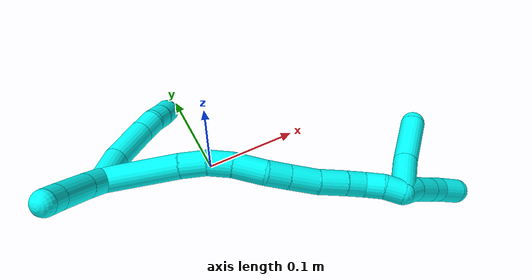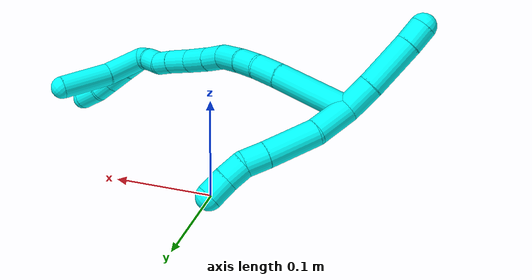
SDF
<sdf version="1.7">
 <world name="default">
  <model name="3">
   <static>0</static>
   <link name="3">
    <collision name="collision-cylinder-e_1_2_8">
     <pose>-0.005307 -0.003405 0.017743 0.189621 -0.285698 -0.027353</pose>
     <geometry><cylinder><radius>0.0125</radius><length>0.03766</length></cylinder></geometry>
     <surface>
      <friction><ode><mu>1.16</mu><mu2>1.16</mu2><slip1>0</slip1><slip2>0</slip2></ode></friction>
      <contact><ode><kp>1e+06</kp><kd>1</kd><max_vel>0</max_vel><min_depth>0.001</min_depth></ode></contact>
     </surface>
    </collision>
    <visual name="visual-cylinder-e_1_2_8">
     <pose>-0.005307 -0.003405 0.017743 0.189621 -0.285698 -0.027353</pose>
     <geometry><cylinder><radius>0.0125</radius><length>0.03766</length></cylinder></geometry>
     <material><ambient>0.003922 1 0.996078 1</ambient></material>
    </visual>
    <collision name="collision-cylinder-e_2_8_9">
     <pose>-0.013354 -0.015102 0.058577 0.344715 -0.111219 -0.019381</pose>
     <geometry><cylinder><radius>0.0125</radius><length>0.049374</length></cylinder></geometry>
     <surface>
      <friction><ode><mu>1.16</mu><mu2>1.16</mu2><slip1>0</slip1><slip2>0</slip2></ode></friction>
      <contact><ode><kp>1e+06</kp><kd>1</kd><max_vel>0</max_vel><min_depth>0.001</min_depth></ode></contact>
     </surface>
    </collision>
    <visual name="visual-cylinder-e_2_8_9">
     <pose>-0.013354 -0.015102 0.058577 0.344715 -0.111219 -0.019381</pose>
     <geometry><cylinder><radius>0.0125</radius><length>0.049374</length></cylinder></geometry>
     <material><ambient>0.003922 1 0.996078 1</ambient></material>
    </visual>
    <collision name="collision-cylinder-e_3_9_10">
     <pose>-0.016938 -0.027388 0.091767 0.376767 -0.077621 -0.014805</pose>
     <geometry><cylinder><radius>0.0125</radius><length>0.021788</length></cylinder></geometry>
     <surface>
      <friction><ode><mu>1.16</mu><mu2>1.16</mu2><slip1>0</slip1><slip2>0</slip2></ode></friction>
      <contact><ode><kp>1e+06</kp><kd>1</kd><max_vel>0</max_vel><min_depth>0.001</min_depth></ode></contact>
     </surface>
    </collision>
    <visual name="visual-cylinder-e_3_9_10">
     <pose>-0.016938 -0.027388 0.091767 0.376767 -0.077621 -0.014805</pose>
     <geometry><cylinder><radius>0.0125</radius><length>0.021788</length></cylinder></geometry>
     <material><ambient>0.003922 1 0.996078 1</ambient></material>
    </visual>
    <collision name="collision-cylinder-e_4_10_11">
     <pose>-0.018457 -0.031745 0.111865 0.035994 -0.067303 -0.001212</pose>
     <geometry><cylinder><radius>0.0125</radius><length>0.020055</length></cylinder></geometry>
     <surface>
      <friction><ode><mu>1.16</mu><mu2>1.16</mu2><slip1>0</slip1><slip2>0</slip2></ode></friction>
      <contact><ode><kp>1e+06</kp><kd>1</kd><max_vel>0</max_vel><min_depth>0.001</min_depth></ode></contact>
     </surface>
    </collision>
    <visual name="visual-cylinder-e_4_10_11">
     <pose>-0.018457 -0.031745 0.111865 0.035994 -0.067303 -0.001212</pose>
     <geometry><cylinder><radius>0.0125</radius><length>0.020055</length></cylinder></geometry>
     <material><ambient>0.003922 1 0.996078 1</ambient></material>
    </visual>
    <collision name="collision-cylinder-e_5_11_6">
     <pose>-0.020681 -0.031692 0.132303 -0.039498 -0.147173 0.002912</pose>
     <geometry><cylinder><radius>0.0125</radius><length>0.021123</length></cylinder></geometry>
     <surface>
      <friction><ode><mu>1.16</mu><mu2>1.16</mu2><slip1>0</slip1><slip2>0</slip2></ode></friction>
      <contact><ode><kp>1e+06</kp><kd>1</kd><max_vel>0</max_vel><min_depth>0.001</min_depth></ode></contact>
     </surface>
    </collision>
    <visual name="visual-cylinder-e_5_11_6">
     <pose>-0.020681 -0.031692 0.132303 -0.039498 -0.147173 0.002912</pose>
     <geometry><cylinder><radius>0.0125</radius><length>0.021123</length></cylinder></geometry>
     <material><ambient>0.003922 1 0.996078 1</ambient></material>
    </visual>
    <collision name="collision-cylinder-e_1_2_12">
     <pose>-0.000817 -0.001149 -0.014794 3.06405 -0.055004 -1.23376</pose>
     <geometry><cylinder><radius>0.0125</radius><length>0.029722</length></cylinder></geometry>
     <surface>
      <friction><ode><mu>1.16</mu><mu2>1.16</mu2><slip1>0</slip1><slip2>0</slip2></ode></friction>
      <contact><ode><kp>1e+06</kp><kd>1</kd><max_vel>0</max_vel><min_depth>0.001</min_depth></ode></contact>
     </surface>
    </collision>
    <visual name="visual-cylinder-e_1_2_12">
     <pose>-0.000817 -0.001149 -0.014794 3.06405 -0.055004 -1.23376</pose>
     <geometry><cylinder><radius>0.0125</radius><length>0.029722</length></cylinder></geometry>
     <material><ambient>0.003922 1 0.996078 1</ambient></material>
    </visual>
    <collision name="collision-cylinder-e_2_12_13">
     <pose>-0.001627 -0.005194 -0.054093 3.02399 0.000299 0.005085</pose>
     <geometry><cylinder><radius>0.0125</radius><length>0.049353</length></cylinder></geometry>
     <surface>
      <friction><ode><mu>1.16</mu><mu2>1.16</mu2><slip1>0</slip1><slip2>0</slip2></ode></friction>
      <contact><ode><kp>1e+06</kp><kd>1</kd><max_vel>0</max_vel><min_depth>0.001</min_depth></ode></contact>
     </surface>
    </collision>
    <visual name="visual-cylinder-e_2_12_13">
     <pose>-0.001627 -0.005194 -0.054093 3.02399 0.000299 0.005085</pose>
     <geometry><cylinder><radius>0.0125</radius><length>0.049353</length></cylinder></geometry>
     <material><ambient>0.003922 1 0.996078 1</ambient></material>
    </visual>
    <collision name="collision-cylinder-e_3_13_5">
     <pose>-0.001137 -0.009669 -0.088931 2.98988 0.046087 0.588877</pose>
     <geometry><cylinder><radius>0.0125</radius><length>0.020926</length></cylinder></geometry>
     <surface>
      <friction><ode><mu>1.16</mu><mu2>1.16</mu2><slip1>0</slip1><slip2>0</slip2></ode></friction>
      <contact><ode><kp>1e+06</kp><kd>1</kd><max_vel>0</max_vel><min_depth>0.001</min_depth></ode></contact>
     </surface>
    </collision>
    <visual name="visual-cylinder-e_3_13_5">
     <pose>-0.001137 -0.009669 -0.088931 2.98988 0.046087 0.588877</pose>
     <geometry><cylinder><radius>0.0125</radius><length>0.020926</length></cylinder></geometry>
     <material><ambient>0.003922 1 0.996078 1</ambient></material>
    </visual>
    <collision name="collision-cylinder-e_1_2_14">
     <pose>0.02624 -0.025286 0.011461 1.14525 0.757218 0.502085</pose>
     <geometry><cylinder><radius>0.0125</radius><length>0.076402</length></cylinder></geometry>
     <surface>
      <friction><ode><mu>1.16</mu><mu2>1.16</mu2><slip1>0</slip1><slip2>0</slip2></ode></friction>
      <contact><ode><kp>1e+06</kp><kd>1</kd><max_vel>0</max_vel><min_depth>0.001</min_depth></ode></contact>
     </surface>
    </collision>
    <visual name="visual-cylinder-e_1_2_14">
     <pose>0.02624 -0.025286 0.011461 1.14525 0.757218 0.502085</pose>
     <geometry><cylinder><radius>0.0125</radius><length>0.076402</length></cylinder></geometry>
     <material><ambient>0.003922 1 0.996078 1</ambient></material>
    </visual>
    <collision name="collision-cylinder-e_2_14_15">
     <pose>0.062199 -0.058588 0.027062 1.09402 0.822615 0.51928</pose>
     <geometry><cylinder><radius>0.0125</radius><length>0.026521</length></cylinder></geometry>
     <surface>
      <friction><ode><mu>1.16</mu><mu2>1.16</mu2><slip1>0</slip1><slip2>0</slip2></ode></friction>
      <contact><ode><kp>1e+06</kp><kd>1</kd><max_vel>0</max_vel><min_depth>0.001</min_depth></ode></contact>
     </surface>
    </collision>
    <visual name="visual-cylinder-e_2_14_15">
     <pose>0.062199 -0.058588 0.027062 1.09402 0.822615 0.51928</pose>
     <geometry><cylinder><radius>0.0125</radius><length>0.026521</length></cylinder></geometry>
     <material><ambient>0.003922 1 0.996078 1</ambient></material>
    </visual>
    <collision name="collision-cylinder-e_3_15_16">
     <pose>0.081993 -0.071824 0.034797 0.967851 1.00915 0.565019</pose>
     <geometry><cylinder><radius>0.0125</radius><length>0.023805</length></cylinder></geometry>
     <surface>
      <friction><ode><mu>1.16</mu><mu2>1.16</mu2><slip1>0</slip1><slip2>0</slip2></ode></friction>
      <contact><ode><kp>1e+06</kp><kd>1</kd><max_vel>0</max_vel><min_depth>0.001</min_depth></ode></contact>
     </surface>
    </collision>
    <visual name="visual-cylinder-e_3_15_16">
     <pose>0.081993 -0.071824 0.034797 0.967851 1.00915 0.565019</pose>
     <geometry><cylinder><radius>0.0125</radius><length>0.023805</length></cylinder></geometry>
     <material><ambient>0.003922 1 0.996078 1</ambient></material>
    </visual>
    <collision name="collision-cylinder-e_4_16_17">
     <pose>0.106453 -0.081688 0.042936 0.796036 1.14667 0.530185</pose>
     <geometry><cylinder><radius>0.0125</radius><length>0.03157</length></cylinder></geometry>
     <surface>
      <friction><ode><mu>1.16</mu><mu2>1.16</mu2><slip1>0</slip1><slip2>0</slip2></ode></friction>
      <contact><ode><kp>1e+06</kp><kd>1</kd><max_vel>0</max_vel><min_depth>0.001</min_depth></ode></contact>
     </surface>
    </collision>
    <visual name="visual-cylinder-e_4_16_17">
     <pose>0.106453 -0.081688 0.042936 0.796036 1.14667 0.530185</pose>
     <geometry><cylinder><radius>0.0125</radius><length>0.03157</length></cylinder></geometry>
     <material><ambient>0.003922 1 0.996078 1</ambient></material>
    </visual>
    <collision name="collision-cylinder-e_5_17_18">
     <pose>0.130283 -0.088755 0.053825 0.36502 0.947197 0.188617</pose>
     <geometry><cylinder><radius>0.0125</radius><length>0.023265</length></cylinder></geometry>
     <surface>
      <friction><ode><mu>1.16</mu><mu2>1.16</mu2><slip1>0</slip1><slip2>0</slip2></ode></friction>
      <contact><ode><kp>1e+06</kp><kd>1</kd><max_vel>0</max_vel><min_depth>0.001</min_depth></ode></contact>
     </surface>
    </collision>
    <visual name="visual-cylinder-e_5_17_18">
     <pose>0.130283 -0.088755 0.053825 0.36502 0.947197 0.188617</pose>
     <geometry><cylinder><radius>0.0125</radius><length>0.023265</length></cylinder></geometry>
     <material><ambient>0.003922 1 0.996078 1</ambient></material>
    </visual>
    <collision name="collision-cylinder-e_6_18_19">
     <pose>0.15208 -0.094816 0.06786 0.441751 0.96786 0.234956</pose>
     <geometry><cylinder><radius>0.0125</radius><length>0.029999</length></cylinder></geometry>
     <surface>
      <friction><ode><mu>1.16</mu><mu2>1.16</mu2><slip1>0</slip1><slip2>0</slip2></ode></friction>
      <contact><ode><kp>1e+06</kp><kd>1</kd><max_vel>0</max_vel><min_depth>0.001</min_depth></ode></contact>
     </surface>
    </collision>
    <visual name="visual-cylinder-e_6_18_19">
     <pose>0.15208 -0.094816 0.06786 0.441751 0.96786 0.234956</pose>
     <geometry><cylinder><radius>0.0125</radius><length>0.029999</length></cylinder></geometry>
     <material><ambient>0.003922 1 0.996078 1</ambient></material>
    </visual>
    <collision name="collision-cylinder-e_7_19_20">
     <pose>0.175232 -0.103014 0.083521 0.519705 0.865858 0.244523</pose>
     <geometry><cylinder><radius>0.0125</radius><length>0.028351</length></cylinder></geometry>
     <surface>
      <friction><ode><mu>1.16</mu><mu2>1.16</mu2><slip1>0</slip1><slip2>0</slip2></ode></friction>
      <contact><ode><kp>1e+06</kp><kd>1</kd><max_vel>0</max_vel><min_depth>0.001</min_depth></ode></contact>
     </surface>
    </collision>
    <visual name="visual-cylinder-e_7_19_20">
     <pose>0.175232 -0.103014 0.083521 0.519705 0.865858 0.244523</pose>
     <geometry><cylinder><radius>0.0125</radius><length>0.028351</length></cylinder></geometry>
     <material><ambient>0.003922 1 0.996078 1</ambient></material>
    </visual>
    <collision name="collision-cylinder-e_8_20_21">
     <pose>0.193606 -0.110388 0.0974 0.444383 0.858662 0.206126</pose>
     <geometry><cylinder><radius>0.0125</radius><length>0.020021</length></cylinder></geometry>
     <surface>
      <friction><ode><mu>1.16</mu><mu2>1.16</mu2><slip1>0</slip1><slip2>0</slip2></ode></friction>
      <contact><ode><kp>1e+06</kp><kd>1</kd><max_vel>0</max_vel><min_depth>0.001</min_depth></ode></contact>
     </surface>
    </collision>
    <visual name="visual-cylinder-e_8_20_21">
     <pose>0.193606 -0.110388 0.0974 0.444383 0.858662 0.206126</pose>
     <geometry><cylinder><radius>0.0125</radius><length>0.020021</length></cylinder></geometry>
     <material><ambient>0.003922 1 0.996078 1</ambient></material>
    </visual>
    <collision name="collision-cylinder-e_9_21_22">
     <pose>0.209735 -0.117478 0.106308 0.958943 1.02217 0.567419</pose>
     <geometry><cylinder><radius>0.0125</radius><length>0.020044</length></cylinder></geometry>
     <surface>
      <friction><ode><mu>1.16</mu><mu2>1.16</mu2><slip1>0</slip1><slip2>0</slip2></ode></friction>
      <contact><ode><kp>1e+06</kp><kd>1</kd><max_vel>0</max_vel><min_depth>0.001</min_depth></ode></contact>
     </surface>
    </collision>
    <visual name="visual-cylinder-e_9_21_22">
     <pose>0.209735 -0.117478 0.106308 0.958943 1.02217 0.567419</pose>
     <geometry><cylinder><radius>0.0125</radius><length>0.020044</length></cylinder></geometry>
     <material><ambient>0.003922 1 0.996078 1</ambient></material>
    </visual>
    <collision name="collision-cylinder-e_10_22_1">
     <pose>0.227519 -0.123968 0.112486 0.60825 1.17388 0.411608</pose>
     <geometry><cylinder><radius>0.0125</radius><length>0.020022</length></cylinder></geometry>
     <surface>
      <friction><ode><mu>1.16</mu><mu2>1.16</mu2><slip1>0</slip1><slip2>0</slip2></ode></friction>
      <contact><ode><kp>1e+06</kp><kd>1</kd><max_vel>0</max_vel><min_depth>0.001</min_depth></ode></contact>
     </surface>
    </collision>
    <visual name="visual-cylinder-e_10_22_1">
     <pose>0.227519 -0.123968 0.112486 0.60825 1.17388 0.411608</pose>
     <geometry><cylinder><radius>0.0125</radius><length>0.020022</length></cylinder></geometry>
     <material><ambient>0.003922 1 0.996078 1</ambient></material>
    </visual>
    <collision name="collision-cylinder-e_1_1_23">
     <pose>0.240484 -0.126778 0.127152 0.052032 0.313677 0.00823</pose>
     <geometry><cylinder><radius>0.0125</radius><length>0.02419</length></cylinder></geometry>
     <surface>
      <friction><ode><mu>1.16</mu><mu2>1.16</mu2><slip1>0</slip1><slip2>0</slip2></ode></friction>
      <contact><ode><kp>1e+06</kp><kd>1</kd><max_vel>0</max_vel><min_depth>0.001</min_depth></ode></contact>
     </surface>
    </collision>
    <visual name="visual-cylinder-e_1_1_23">
     <pose>0.240484 -0.126778 0.127152 0.052032 0.313677 0.00823</pose>
     <geometry><cylinder><radius>0.0125</radius><length>0.02419</length></cylinder></geometry>
     <material><ambient>0.003922 1 0.996078 1</ambient></material>
    </visual>
    <collision name="collision-cylinder-e_2_23_24">
     <pose>0.250685 -0.127382 0.150933 0.000439 0.484411 0.000108</pose>
     <geometry><cylinder><radius>0.0125</radius><length>0.027782</length></cylinder></geometry>
     <surface>
      <friction><ode><mu>1.16</mu><mu2>1.16</mu2><slip1>0</slip1><slip2>0</slip2></ode></friction>
      <contact><ode><kp>1e+06</kp><kd>1</kd><max_vel>0</max_vel><min_depth>0.001</min_depth></ode></contact>
     </surface>
    </collision>
    <visual name="visual-cylinder-e_2_23_24">
     <pose>0.250685 -0.127382 0.150933 0.000439 0.484411 0.000108</pose>
     <geometry><cylinder><radius>0.0125</radius><length>0.027782</length></cylinder></geometry>
     <material><ambient>0.003922 1 0.996078 1</ambient></material>
    </visual>
    <collision name="collision-cylinder-e_3_24_25">
     <pose>0.261568 -0.127524 0.172252 0.015177 0.454873 0.003513</pose>
     <geometry><cylinder><radius>0.0125</radius><length>0.020097</length></cylinder></geometry>
     <surface>
      <friction><ode><mu>1.16</mu><mu2>1.16</mu2><slip1>0</slip1><slip2>0</slip2></ode></friction>
      <contact><ode><kp>1e+06</kp><kd>1</kd><max_vel>0</max_vel><min_depth>0.001</min_depth></ode></contact>
     </surface>
    </collision>
    <visual name="visual-cylinder-e_3_24_25">
     <pose>0.261568 -0.127524 0.172252 0.015177 0.454873 0.003513</pose>
     <geometry><cylinder><radius>0.0125</radius><length>0.020097</length></cylinder></geometry>
     <material><ambient>0.003922 1 0.996078 1</ambient></material>
    </visual>
    <collision name="collision-cylinder-e_4_25_4">
     <pose>0.274695 -0.12931 0.192068 0.151615 0.673595 0.053175</pose>
     <geometry><cylinder><radius>0.0125</radius><length>0.027932</length></cylinder></geometry>
     <surface>
      <friction><ode><mu>1.16</mu><mu2>1.16</mu2><slip1>0</slip1><slip2>0</slip2></ode></friction>
      <contact><ode><kp>1e+06</kp><kd>1</kd><max_vel>0</max_vel><min_depth>0.001</min_depth></ode></contact>
     </surface>
    </collision>
    <visual name="visual-cylinder-e_4_25_4">
     <pose>0.274695 -0.12931 0.192068 0.151615 0.673595 0.053175</pose>
     <geometry><cylinder><radius>0.0125</radius><length>0.027932</length></cylinder></geometry>
     <material><ambient>0.003922 1 0.996078 1</ambient></material>
    </visual>
    <collision name="collision-cylinder-e_1_1_26">
     <pose>0.229022 -0.133239 0.135815 0.336949 -0.347325 -0.059659</pose>
     <geometry><cylinder><radius>0.0125</radius><length>0.04542</length></cylinder></geometry>
     <surface>
      <friction><ode><mu>1.16</mu><mu2>1.16</mu2><slip1>0</slip1><slip2>0</slip2></ode></friction>
      <contact><ode><kp>1e+06</kp><kd>1</kd><max_vel>0</max_vel><min_depth>0.001</min_depth></ode></contact>
     </surface>
    </collision>
    <visual name="visual-cylinder-e_1_1_26">
     <pose>0.229022 -0.133239 0.135815 0.336949 -0.347325 -0.059659</pose>
     <geometry><cylinder><radius>0.0125</radius><length>0.04542</length></cylinder></geometry>
     <material><ambient>0.003922 1 0.996078 1</ambient></material>
    </visual>
    <collision name="collision-cylinder-e_2_26_3">
     <pose>0.212701 -0.152548 0.178792 0.492569 -0.320226 -0.081151</pose>
     <geometry><cylinder><radius>0.0125</radius><length>0.05458</length></cylinder></geometry>
     <surface>
      <friction><ode><mu>1.16</mu><mu2>1.16</mu2><slip1>0</slip1><slip2>0</slip2></ode></friction>
      <contact><ode><kp>1e+06</kp><kd>1</kd><max_vel>0</max_vel><min_depth>0.001</min_depth></ode></contact>
     </surface>
    </collision>
    <visual name="visual-cylinder-e_2_26_3">
     <pose>0.212701 -0.152548 0.178792 0.492569 -0.320226 -0.081151</pose>
     <geometry><cylinder><radius>0.0125</radius><length>0.05458</length></cylinder></geometry>
     <material><ambient>0.003922 1 0.996078 1</ambient></material>
    </visual>
    <collision name="collision-sphere-3">
     <pose>0.204111 -0.164798 0.201615 0 -0 0</pose>
     <geometry><sphere><radius>0.0125</radius></sphere></geometry>
     <surface>
      <friction><ode><mu>1.16</mu><mu2>1.16</mu2><slip1>0</slip1><slip2>0</slip2></ode></friction>
      <contact><ode><kp>1e+06</kp><kd>1</kd><max_vel>0</max_vel><min_depth>0.001</min_depth></ode></contact>
     </surface>
    </collision>
    <visual name="visual-sphere-3">
     <pose>0.204111 -0.164798 0.201615 0 -0 0</pose>
     <geometry><sphere><radius>0.0125</radius></sphere></geometry>
     <material><ambient>0.003922 1 0.996078 1</ambient></material>
    </visual>
    <collision name="collision-sphere-26">
     <pose>0.221292 -0.140299 0.155969 0 -0 0</pose>
     <geometry><sphere><radius>0.0125</radius></sphere></geometry>
     <surface>
      <friction><ode><mu>1.16</mu><mu2>1.16</mu2><slip1>0</slip1><slip2>0</slip2></ode></friction>
      <contact><ode><kp>1e+06</kp><kd>1</kd><max_vel>0</max_vel><min_depth>0.001</min_depth></ode></contact>
     </surface>
    </collision>
    <visual name="visual-sphere-26">
     <pose>0.221292 -0.140299 0.155969 0 -0 0</pose>
     <geometry><sphere><radius>0.0125</radius></sphere></geometry>
     <material><ambient>0.003922 1 0.996078 1</ambient></material>
    </visual>
    <collision name="collision-sphere-4">
     <pose>0.283407 -0.130958 0.202858 0 -0 0</pose>
     <geometry><sphere><radius>0.0125</radius></sphere></geometry>
     <surface>
      <friction><ode><mu>1.16</mu><mu2>1.16</mu2><slip1>0</slip1><slip2>0</slip2></ode></friction>
      <contact><ode><kp>1e+06</kp><kd>1</kd><max_vel>0</max_vel><min_depth>0.001</min_depth></ode></contact>
     </surface>
    </collision>
    <visual name="visual-sphere-4">
     <pose>0.283407 -0.130958 0.202858 0 -0 0</pose>
     <geometry><sphere><radius>0.0125</radius></sphere></geometry>
     <material><ambient>0.003922 1 0.996078 1</ambient></material>
    </visual>
    <collision name="collision-sphere-25">
     <pose>0.265983 -0.127661 0.181277 0 -0 0</pose>
     <geometry><sphere><radius>0.0125</radius></sphere></geometry>
     <surface>
      <friction><ode><mu>1.16</mu><mu2>1.16</mu2><slip1>0</slip1><slip2>0</slip2></ode></friction>
      <contact><ode><kp>1e+06</kp><kd>1</kd><max_vel>0</max_vel><min_depth>0.001</min_depth></ode></contact>
     </surface>
    </collision>
    <visual name="visual-sphere-25">
     <pose>0.265983 -0.127661 0.181277 0 -0 0</pose>
     <geometry><sphere><radius>0.0125</radius></sphere></geometry>
     <material><ambient>0.003922 1 0.996078 1</ambient></material>
    </visual>
    <collision name="collision-sphere-24">
     <pose>0.257153 -0.127387 0.163226 0 -0 0</pose>
     <geometry><sphere><radius>0.0125</radius></sphere></geometry>
     <surface>
      <friction><ode><mu>1.16</mu><mu2>1.16</mu2><slip1>0</slip1><slip2>0</slip2></ode></friction>
      <contact><ode><kp>1e+06</kp><kd>1</kd><max_vel>0</max_vel><min_depth>0.001</min_depth></ode></contact>
     </surface>
    </collision>
    <visual name="visual-sphere-24">
     <pose>0.257153 -0.127387 0.163226 0 -0 0</pose>
     <geometry><sphere><radius>0.0125</radius></sphere></geometry>
     <material><ambient>0.003922 1 0.996078 1</ambient></material>
    </visual>
    <collision name="collision-sphere-23">
     <pose>0.244216 -0.127376 0.138641 0 -0 0</pose>
     <geometry><sphere><radius>0.0125</radius></sphere></geometry>
     <surface>
      <friction><ode><mu>1.16</mu><mu2>1.16</mu2><slip1>0</slip1><slip2>0</slip2></ode></friction>
      <contact><ode><kp>1e+06</kp><kd>1</kd><max_vel>0</max_vel><min_depth>0.001</min_depth></ode></contact>
     </surface>
    </collision>
    <visual name="visual-sphere-23">
     <pose>0.244216 -0.127376 0.138641 0 -0 0</pose>
     <geometry><sphere><radius>0.0125</radius></sphere></geometry>
     <material><ambient>0.003922 1 0.996078 1</ambient></material>
    </visual>
    <collision name="collision-sphere-1">
     <pose>0.236752 -0.12618 0.115662 0 -0 0</pose>
     <geometry><sphere><radius>0.0125</radius></sphere></geometry>
     <surface>
      <friction><ode><mu>1.16</mu><mu2>1.16</mu2><slip1>0</slip1><slip2>0</slip2></ode></friction>
      <contact><ode><kp>1e+06</kp><kd>1</kd><max_vel>0</max_vel><min_depth>0.001</min_depth></ode></contact>
     </surface>
    </collision>
    <visual name="visual-sphere-1">
     <pose>0.236752 -0.12618 0.115662 0 -0 0</pose>
     <geometry><sphere><radius>0.0125</radius></sphere></geometry>
     <material><ambient>0.003922 1 0.996078 1</ambient></material>
    </visual>
    <collision name="collision-sphere-22">
     <pose>0.218286 -0.121757 0.109311 0 -0 0</pose>
     <geometry><sphere><radius>0.0125</radius></sphere></geometry>
     <surface>
      <friction><ode><mu>1.16</mu><mu2>1.16</mu2><slip1>0</slip1><slip2>0</slip2></ode></friction>
      <contact><ode><kp>1e+06</kp><kd>1</kd><max_vel>0</max_vel><min_depth>0.001</min_depth></ode></contact>
     </surface>
    </collision>
    <visual name="visual-sphere-22">
     <pose>0.218286 -0.121757 0.109311 0 -0 0</pose>
     <geometry><sphere><radius>0.0125</radius></sphere></geometry>
     <material><ambient>0.003922 1 0.996078 1</ambient></material>
    </visual>
    <collision name="collision-sphere-21">
     <pose>0.201184 -0.1132 0.103306 0 -0 0</pose>
     <geometry><sphere><radius>0.0125</radius></sphere></geometry>
     <surface>
      <friction><ode><mu>1.16</mu><mu2>1.16</mu2><slip1>0</slip1><slip2>0</slip2></ode></friction>
      <contact><ode><kp>1e+06</kp><kd>1</kd><max_vel>0</max_vel><min_depth>0.001</min_depth></ode></contact>
     </surface>
    </collision>
    <visual name="visual-sphere-21">
     <pose>0.201184 -0.1132 0.103306 0 -0 0</pose>
     <geometry><sphere><radius>0.0125</radius></sphere></geometry>
     <material><ambient>0.003922 1 0.996078 1</ambient></material>
    </visual>
    <collision name="collision-sphere-6">
     <pose>-0.022229 -0.03128 0.142742 0 -0 0</pose>
     <geometry><sphere><radius>0.0125</radius></sphere></geometry>
     <surface>
      <friction><ode><mu>1.16</mu><mu2>1.16</mu2><slip1>0</slip1><slip2>0</slip2></ode></friction>
      <contact><ode><kp>1e+06</kp><kd>1</kd><max_vel>0</max_vel><min_depth>0.001</min_depth></ode></contact>
     </surface>
    </collision>
    <visual name="visual-sphere-6">
     <pose>-0.022229 -0.03128 0.142742 0 -0 0</pose>
     <geometry><sphere><radius>0.0125</radius></sphere></geometry>
     <material><ambient>0.003922 1 0.996078 1</ambient></material>
    </visual>
    <collision name="collision-sphere-11">
     <pose>-0.019132 -0.032105 0.121864 0 -0 0</pose>
     <geometry><sphere><radius>0.0125</radius></sphere></geometry>
     <surface>
      <friction><ode><mu>1.16</mu><mu2>1.16</mu2><slip1>0</slip1><slip2>0</slip2></ode></friction>
      <contact><ode><kp>1e+06</kp><kd>1</kd><max_vel>0</max_vel><min_depth>0.001</min_depth></ode></contact>
     </surface>
    </collision>
    <visual name="visual-sphere-11">
     <pose>-0.019132 -0.032105 0.121864 0 -0 0</pose>
     <geometry><sphere><radius>0.0125</radius></sphere></geometry>
     <material><ambient>0.003922 1 0.996078 1</ambient></material>
    </visual>
    <collision name="collision-sphere-10">
     <pose>-0.017783 -0.031385 0.101867 0 -0 0</pose>
     <geometry><sphere><radius>0.0125</radius></sphere></geometry>
     <surface>
      <friction><ode><mu>1.16</mu><mu2>1.16</mu2><slip1>0</slip1><slip2>0</slip2></ode></friction>
      <contact><ode><kp>1e+06</kp><kd>1</kd><max_vel>0</max_vel><min_depth>0.001</min_depth></ode></contact>
     </surface>
    </collision>
    <visual name="visual-sphere-10">
     <pose>-0.017783 -0.031385 0.101867 0 -0 0</pose>
     <geometry><sphere><radius>0.0125</radius></sphere></geometry>
     <material><ambient>0.003922 1 0.996078 1</ambient></material>
    </visual>
    <collision name="collision-sphere-9">
     <pose>-0.016094 -0.023392 0.081668 0 -0 0</pose>
     <geometry><sphere><radius>0.0125</radius></sphere></geometry>
     <surface>
      <friction><ode><mu>1.16</mu><mu2>1.16</mu2><slip1>0</slip1><slip2>0</slip2></ode></friction>
      <contact><ode><kp>1e+06</kp><kd>1</kd><max_vel>0</max_vel><min_depth>0.001</min_depth></ode></contact>
     </surface>
    </collision>
    <visual name="visual-sphere-9">
     <pose>-0.016094 -0.023392 0.081668 0 -0 0</pose>
     <geometry><sphere><radius>0.0125</radius></sphere></geometry>
     <material><ambient>0.003922 1 0.996078 1</ambient></material>
    </visual>
    <collision name="collision-sphere-2">
     <geometry><sphere><radius>0.0125</radius></sphere></geometry>
     <surface>
      <friction><ode><mu>1.16</mu><mu2>1.16</mu2><slip1>0</slip1><slip2>0</slip2></ode></friction>
      <contact><ode><kp>1e+06</kp><kd>1</kd><max_vel>0</max_vel><min_depth>0.001</min_depth></ode></contact>
     </surface>
    </collision>
    <visual name="visual-sphere-2">
     <geometry><sphere><radius>0.0125</radius></sphere></geometry>
     <material><ambient>0.003922 1 0.996078 1</ambient></material>
    </visual>
    <collision name="collision-sphere-19">
     <pose>0.164435 -0.098452 0.075549 0 -0 0</pose>
     <geometry><sphere><radius>0.0125</radius></sphere></geometry>
     <surface>
      <friction><ode><mu>1.16</mu><mu2>1.16</mu2><slip1>0</slip1><slip2>0</slip2></ode></friction>
      <contact><ode><kp>1e+06</kp><kd>1</kd><max_vel>0</max_vel><min_depth>0.001</min_depth></ode></contact>
     </surface>
    </collision>
    <visual name="visual-sphere-19">
     <pose>0.164435 -0.098452 0.075549 0 -0 0</pose>
     <geometry><sphere><radius>0.0125</radius></sphere></geometry>
     <material><ambient>0.003922 1 0.996078 1</ambient></material>
    </visual>
    <collision name="collision-sphere-8">
     <pose>-0.010613 -0.006811 0.035485 0 -0 0</pose>
     <geometry><sphere><radius>0.0125</radius></sphere></geometry>
     <surface>
      <friction><ode><mu>1.16</mu><mu2>1.16</mu2><slip1>0</slip1><slip2>0</slip2></ode></friction>
      <contact><ode><kp>1e+06</kp><kd>1</kd><max_vel>0</max_vel><min_depth>0.001</min_depth></ode></contact>
     </surface>
    </collision>
    <visual name="visual-sphere-8">
     <pose>-0.010613 -0.006811 0.035485 0 -0 0</pose>
     <geometry><sphere><radius>0.0125</radius></sphere></geometry>
     <material><ambient>0.003922 1 0.996078 1</ambient></material>
    </visual>
    <collision name="collision-sphere-12">
     <pose>-0.001634 -0.002299 -0.029587 0 -0 0</pose>
     <geometry><sphere><radius>0.0125</radius></sphere></geometry>
     <surface>
      <friction><ode><mu>1.16</mu><mu2>1.16</mu2><slip1>0</slip1><slip2>0</slip2></ode></friction>
      <contact><ode><kp>1e+06</kp><kd>1</kd><max_vel>0</max_vel><min_depth>0.001</min_depth></ode></contact>
     </surface>
    </collision>
    <visual name="visual-sphere-12">
     <pose>-0.001634 -0.002299 -0.029587 0 -0 0</pose>
     <geometry><sphere><radius>0.0125</radius></sphere></geometry>
     <material><ambient>0.003922 1 0.996078 1</ambient></material>
    </visual>
    <collision name="collision-sphere-13">
     <pose>-0.001619 -0.00809 -0.078599 0 -0 0</pose>
     <geometry><sphere><radius>0.0125</radius></sphere></geometry>
     <surface>
      <friction><ode><mu>1.16</mu><mu2>1.16</mu2><slip1>0</slip1><slip2>0</slip2></ode></friction>
      <contact><ode><kp>1e+06</kp><kd>1</kd><max_vel>0</max_vel><min_depth>0.001</min_depth></ode></contact>
     </surface>
    </collision>
    <visual name="visual-sphere-13">
     <pose>-0.001619 -0.00809 -0.078599 0 -0 0</pose>
     <geometry><sphere><radius>0.0125</radius></sphere></geometry>
     <material><ambient>0.003922 1 0.996078 1</ambient></material>
    </visual>
    <collision name="collision-sphere-5">
     <pose>-0.000655 -0.011249 -0.099263 0 -0 0</pose>
     <geometry><sphere><radius>0.0125</radius></sphere></geometry>
     <surface>
      <friction><ode><mu>1.16</mu><mu2>1.16</mu2><slip1>0</slip1><slip2>0</slip2></ode></friction>
      <contact><ode><kp>1e+06</kp><kd>1</kd><max_vel>0</max_vel><min_depth>0.001</min_depth></ode></contact>
     </surface>
    </collision>
    <visual name="visual-sphere-5">
     <pose>-0.000655 -0.011249 -0.099263 0 -0 0</pose>
     <geometry><sphere><radius>0.0125</radius></sphere></geometry>
     <material><ambient>0.003922 1 0.996078 1</ambient></material>
    </visual>
    <collision name="collision-sphere-14">
     <pose>0.05248 -0.050573 0.022922 0 -0 0</pose>
     <geometry><sphere><radius>0.0125</radius></sphere></geometry>
     <surface>
      <friction><ode><mu>1.16</mu><mu2>1.16</mu2><slip1>0</slip1><slip2>0</slip2></ode></friction>
      <contact><ode><kp>1e+06</kp><kd>1</kd><max_vel>0</max_vel><min_depth>0.001</min_depth></ode></contact>
     </surface>
    </collision>
    <visual name="visual-sphere-14">
     <pose>0.05248 -0.050573 0.022922 0 -0 0</pose>
     <geometry><sphere><radius>0.0125</radius></sphere></geometry>
     <material><ambient>0.003922 1 0.996078 1</ambient></material>
    </visual>
    <collision name="collision-sphere-15">
     <pose>0.071918 -0.066603 0.031202 0 -0 0</pose>
     <geometry><sphere><radius>0.0125</radius></sphere></geometry>
     <surface>
      <friction><ode><mu>1.16</mu><mu2>1.16</mu2><slip1>0</slip1><slip2>0</slip2></ode></friction>
      <contact><ode><kp>1e+06</kp><kd>1</kd><max_vel>0</max_vel><min_depth>0.001</min_depth></ode></contact>
     </surface>
    </collision>
    <visual name="visual-sphere-15">
     <pose>0.071918 -0.066603 0.031202 0 -0 0</pose>
     <geometry><sphere><radius>0.0125</radius></sphere></geometry>
     <material><ambient>0.003922 1 0.996078 1</ambient></material>
    </visual>
    <collision name="collision-sphere-16">
     <pose>0.092067 -0.077046 0.038391 0 -0 0</pose>
     <geometry><sphere><radius>0.0125</radius></sphere></geometry>
     <surface>
      <friction><ode><mu>1.16</mu><mu2>1.16</mu2><slip1>0</slip1><slip2>0</slip2></ode></friction>
      <contact><ode><kp>1e+06</kp><kd>1</kd><max_vel>0</max_vel><min_depth>0.001</min_depth></ode></contact>
     </surface>
    </collision>
    <visual name="visual-sphere-16">
     <pose>0.092067 -0.077046 0.038391 0 -0 0</pose>
     <geometry><sphere><radius>0.0125</radius></sphere></geometry>
     <material><ambient>0.003922 1 0.996078 1</ambient></material>
    </visual>
    <collision name="collision-sphere-17">
     <pose>0.12084 -0.08633 0.04748 0 -0 0</pose>
     <geometry><sphere><radius>0.0125</radius></sphere></geometry>
     <surface>
      <friction><ode><mu>1.16</mu><mu2>1.16</mu2><slip1>0</slip1><slip2>0</slip2></ode></friction>
      <contact><ode><kp>1e+06</kp><kd>1</kd><max_vel>0</max_vel><min_depth>0.001</min_depth></ode></contact>
     </surface>
    </collision>
    <visual name="visual-sphere-17">
     <pose>0.12084 -0.08633 0.04748 0 -0 0</pose>
     <geometry><sphere><radius>0.0125</radius></sphere></geometry>
     <material><ambient>0.003922 1 0.996078 1</ambient></material>
    </visual>
    <collision name="collision-sphere-18">
     <pose>0.139726 -0.091179 0.060171 0 -0 0</pose>
     <geometry><sphere><radius>0.0125</radius></sphere></geometry>
     <surface>
      <friction><ode><mu>1.16</mu><mu2>1.16</mu2><slip1>0</slip1><slip2>0</slip2></ode></friction>
      <contact><ode><kp>1e+06</kp><kd>1</kd><max_vel>0</max_vel><min_depth>0.001</min_depth></ode></contact>
     </surface>
    </collision>
    <visual name="visual-sphere-18">
     <pose>0.139726 -0.091179 0.060171 0 -0 0</pose>
     <geometry><sphere><radius>0.0125</radius></sphere></geometry>
     <material><ambient>0.003922 1 0.996078 1</ambient></material>
    </visual>
    <collision name="collision-sphere-20">
     <pose>0.186028 -0.107575 0.091494 0 -0 0</pose>
     <geometry><sphere><radius>0.0125</radius></sphere></geometry>
     <surface>
      <friction><ode><mu>1.16</mu><mu2>1.16</mu2><slip1>0</slip1><slip2>0</slip2></ode></friction>
      <contact><ode><kp>1e+06</kp><kd>1</kd><max_vel>0</max_vel><min_depth>0.001</min_depth></ode></contact>
     </surface>
    </collision>
    <visual name="visual-sphere-20">
     <pose>0.186028 -0.107575 0.091494 0 -0 0</pose>
     <geometry><sphere><radius>0.0125</radius></sphere></geometry>
     <material><ambient>0.003922 1 0.996078 1</ambient></material>
    </visual>
    <inertial>
     <pose>0.106297 -0.070772 0.071222 0 -0 0</pose>
     <mass>0.75</mass>
     <inertia><ixx>0.000137</ixx><ixy>0</ixy><ixz>0</ixz><iyy>8.3e-05</iyy><iyz>0</iyz><izz>4e-05</izz></inertia>
    </inertial>
   </link>
   <pose>-0.119853 -0.030563 0.09651 -2.24297 0.227824 -1.07432</pose>
  </model>
 </world>
</sdf>
